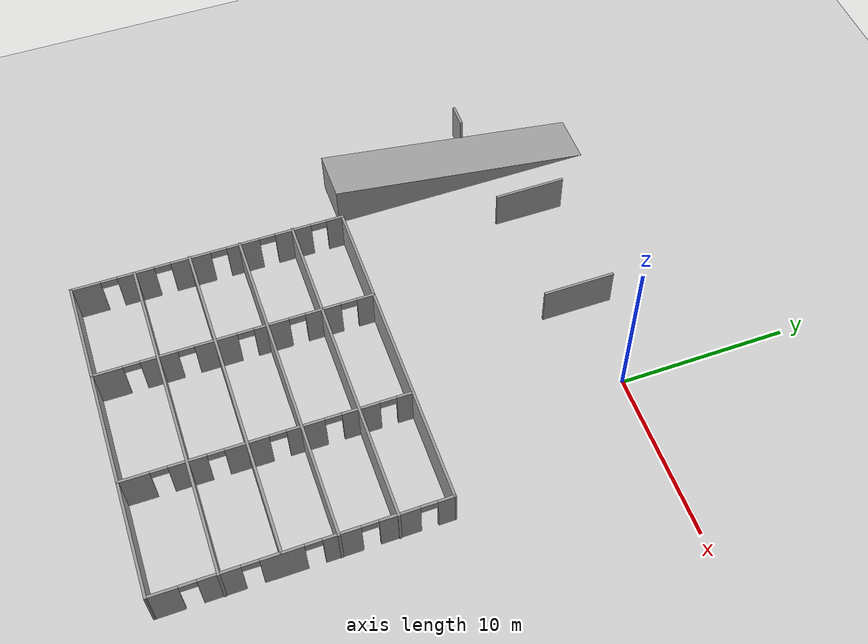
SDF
<sdf version="1.6">
 <world name="default">
  <model name="ground_plane">
   <static>1</static>
   <link name="link">
    <collision name="collision">
     <geometry><plane><normal>0 0 1</normal><size>100 100</size></plane></geometry>
     <surface>
      <contact><collide_bitmask>65535</collide_bitmask></contact>
      <friction><ode><mu>100</mu><mu2>50</mu2></ode></friction>
     </surface>
    </collision>
    <visual name="visual">
     <cast_shadows>0</cast_shadows>
     <geometry><plane><normal>0 0 1</normal><size>100 100</size></plane></geometry>
     <material>
      <script><uri>file://media/materials/scripts/gazebo.material</uri><name>Gazebo/Grey</name></script>
     </material>
    </visual>
   </link>
  </model>
  <model name="5x3_Cubicles">
   <pose>-3.37089 -19.9476 2.66445 0 -0 0</pose>
   <link name="Wall_0">
    <pose>-9.39351 -0 0 0 -0 -1.57435</pose>
    <visual name="Wall_0_Visual_0">
     <pose>-7.27295 0 1.25 0 -0 0</pose>
     <geometry><box><size>1.03181 0.15 2.5</size></box></geometry>
     <material>
      <script><uri>file://media/materials/scripts/gazebo.material</uri><name>Gazebo/Grey</name></script>
      <ambient>1 1 1 1</ambient>
     </material>
     <meta><layer>0</layer></meta>
    </visual>
    <collision name="Wall_0_Collision_0">
     <geometry><box><size>1.03181 0.15 2.5</size></box></geometry>
     <pose>-7.27295 0 1.25 0 -0 0</pose>
    </collision>
    <visual name="Wall_0_Visual_1">
     <pose>-4.8086 0 1.25 0 -0 0</pose>
     <geometry><box><size>2.09689 0.15 2.5</size></box></geometry>
     <material>
      <script><uri>file://media/materials/scripts/gazebo.material</uri><name>Gazebo/Grey</name></script>
      <ambient>1 1 1 1</ambient>
     </material>
     <meta><layer>0</layer></meta>
    </visual>
    <collision name="Wall_0_Collision_1">
     <geometry><box><size>2.09689 0.15 2.5</size></box></geometry>
     <pose>-4.8086 0 1.25 0 -0 0</pose>
    </collision>
    <visual name="Wall_0_Visual_2">
     <pose>-1.91379 0 1.25 0 -0 0</pose>
     <geometry><box><size>1.89272 0.15 2.5</size></box></geometry>
     <material>
      <script><uri>file://media/materials/scripts/gazebo.material</uri><name>Gazebo/Grey</name></script>
      <ambient>1 1 1 1</ambient>
     </material>
     <meta><layer>0</layer></meta>
    </visual>
    <collision name="Wall_0_Collision_2">
     <geometry><box><size>1.89272 0.15 2.5</size></box></geometry>
     <pose>-1.91379 0 1.25 0 -0 0</pose>
    </collision>
    <visual name="Wall_0_Visual_3">
     <pose>1.06918 0 1.25 0 -0 0</pose>
     <geometry><box><size>2.27323 0.15 2.5</size></box></geometry>
     <material>
      <script><uri>file://media/materials/scripts/gazebo.material</uri><name>Gazebo/Grey</name></script>
      <ambient>1 1 1 1</ambient>
     </material>
     <meta><layer>0</layer></meta>
    </visual>
    <collision name="Wall_0_Collision_3">
     <geometry><box><size>2.27323 0.15 2.5</size></box></geometry>
     <pose>1.06918 0 1.25 0 -0 0</pose>
    </collision>
    <visual name="Wall_0_Visual_4">
     <pose>4.14705 0 1.25 0 -0 0</pose>
     <geometry><box><size>2.0825 0.15 2.5</size></box></geometry>
     <material>
      <script><uri>file://media/materials/scripts/gazebo.material</uri><name>Gazebo/Grey</name></script>
      <ambient>1 1 1 1</ambient>
     </material>
     <meta><layer>0</layer></meta>
    </visual>
    <collision name="Wall_0_Collision_4">
     <geometry><box><size>2.0825 0.15 2.5</size></box></geometry>
     <pose>4.14705 0 1.25 0 -0 0</pose>
    </collision>
    <visual name="Wall_0_Visual_5">
     <pose>6.93858 0 1.25 0 -0 0</pose>
     <geometry><box><size>1.70057 0.15 2.5</size></box></geometry>
     <material>
      <script><uri>file://media/materials/scripts/gazebo.material</uri><name>Gazebo/Grey</name></script>
      <ambient>1 1 1 1</ambient>
     </material>
     <meta><layer>0</layer></meta>
    </visual>
    <collision name="Wall_0_Collision_5">
     <geometry><box><size>1.70057 0.15 2.5</size></box></geometry>
     <pose>6.93858 0 1.25 0 -0 0</pose>
    </collision>
    <visual name="Wall_0_Visual_6">
     <pose>-6.30705 0 2.25 0 -0 0</pose>
     <geometry><box><size>0.9 0.15 0.5</size></box></geometry>
     <material>
      <script><uri>file://media/materials/scripts/gazebo.material</uri><name>Gazebo/Grey</name></script>
      <ambient>1 1 1 1</ambient>
     </material>
     <meta><layer>0</layer></meta>
    </visual>
    <collision name="Wall_0_Collision_6">
     <geometry><box><size>0.9 0.15 0.5</size></box></geometry>
     <pose>-6.30705 0 2.25 0 -0 0</pose>
    </collision>
    <visual name="Wall_0_Visual_7">
     <pose>-3.31016 0 2.25 0 -0 0</pose>
     <geometry><box><size>0.9 0.15 0.5</size></box></geometry>
     <material>
      <script><uri>file://media/materials/scripts/gazebo.material</uri><name>Gazebo/Grey</name></script>
      <ambient>1 1 1 1</ambient>
     </material>
     <meta><layer>0</layer></meta>
    </visual>
    <collision name="Wall_0_Collision_7">
     <geometry><box><size>0.9 0.15 0.5</size></box></geometry>
     <pose>-3.31016 0 2.25 0 -0 0</pose>
    </collision>
    <visual name="Wall_0_Visual_8">
     <pose>-0.517433 0 2.25 0 -0 0</pose>
     <geometry><box><size>0.9 0.15 0.5</size></box></geometry>
     <material>
      <script><uri>file://media/materials/scripts/gazebo.material</uri><name>Gazebo/Grey</name></script>
      <ambient>1 1 1 1</ambient>
     </material>
     <meta><layer>0</layer></meta>
    </visual>
    <collision name="Wall_0_Collision_8">
     <geometry><box><size>0.9 0.15 0.5</size></box></geometry>
     <pose>-0.517433 0 2.25 0 -0 0</pose>
    </collision>
    <visual name="Wall_0_Visual_9">
     <pose>2.6558 0 2.25 0 -0 0</pose>
     <geometry><box><size>0.9 0.15 0.5</size></box></geometry>
     <material>
      <script><uri>file://media/materials/scripts/gazebo.material</uri><name>Gazebo/Grey</name></script>
      <ambient>1 1 1 1</ambient>
     </material>
     <meta><layer>0</layer></meta>
    </visual>
    <collision name="Wall_0_Collision_9">
     <geometry><box><size>0.9 0.15 0.5</size></box></geometry>
     <pose>2.6558 0 2.25 0 -0 0</pose>
    </collision>
    <visual name="Wall_0_Visual_10">
     <pose>5.63829 0 2.25 0 -0 0</pose>
     <geometry><box><size>0.9 0.15 0.5</size></box></geometry>
     <material>
      <script><uri>file://media/materials/scripts/gazebo.material</uri><name>Gazebo/Grey</name></script>
      <ambient>1 1 1 1</ambient>
     </material>
     <meta><layer>0</layer></meta>
    </visual>
    <collision name="Wall_0_Collision_10">
     <geometry><box><size>0.9 0.15 0.5</size></box></geometry>
     <pose>5.63829 0 2.25 0 -0 0</pose>
    </collision>
   </link>
   <link name="Wall_10">
    <collision name="Wall_10_Collision">
     <geometry><box><size>19 0.15 2.5</size></box></geometry>
     <pose>0 0 1.25 0 -0 0</pose>
    </collision>
    <visual name="Wall_10_Visual">
     <pose>0 0 1.25 0 -0 0</pose>
     <geometry><box><size>19 0.15 2.5</size></box></geometry>
     <material>
      <script><uri>file://media/materials/scripts/gazebo.material</uri><name>Gazebo/Grey</name></script>
      <ambient>1 1 1 1</ambient>
     </material>
     <meta><layer>0</layer></meta>
    </visual>
    <pose>-0 1.73972 0 0 -0 0</pose>
   </link>
   <link name="Wall_12">
    <collision name="Wall_12_Collision">
     <geometry><box><size>19 0.15 2.5</size></box></geometry>
     <pose>0 0 1.25 0 -0 0</pose>
    </collision>
    <visual name="Wall_12_Visual">
     <pose>0 0 1.25 0 -0 0</pose>
     <geometry><box><size>19 0.15 2.5</size></box></geometry>
     <material>
      <script><uri>file://media/materials/scripts/gazebo.material</uri><name>Gazebo/Grey</name></script>
      <ambient>1 1 1 1</ambient>
     </material>
     <meta><layer>0</layer></meta>
    </visual>
    <pose>0.002757 4.78648 0 0 -0 0</pose>
   </link>
   <link name="Wall_14">
    <pose>3.03244 -0.038205 0 0 -0 -1.57332</pose>
    <visual name="Wall_14_Visual_0">
     <pose>-7.27661 0 1.25 0 -0 0</pose>
     <geometry><box><size>0.887786 0.15 2.5</size></box></geometry>
     <material>
      <script><uri>file://media/materials/scripts/gazebo.material</uri><name>Gazebo/Grey</name></script>
      <ambient>1 1 1 1</ambient>
     </material>
     <meta><layer>0</layer></meta>
    </visual>
    <collision name="Wall_14_Collision_0">
     <geometry><box><size>0.887786 0.15 2.5</size></box></geometry>
     <pose>-7.27661 0 1.25 0 -0 0</pose>
    </collision>
    <visual name="Wall_14_Visual_1">
     <pose>-4.91212 0 1.25 0 -0 0</pose>
     <geometry><box><size>2.04118 0.15 2.5</size></box></geometry>
     <material>
      <script><uri>file://media/materials/scripts/gazebo.material</uri><name>Gazebo/Grey</name></script>
      <ambient>1 1 1 1</ambient>
     </material>
     <meta><layer>0</layer></meta>
    </visual>
    <collision name="Wall_14_Collision_1">
     <geometry><box><size>2.04118 0.15 2.5</size></box></geometry>
     <pose>-4.91212 0 1.25 0 -0 0</pose>
    </collision>
    <visual name="Wall_14_Visual_2">
     <pose>-1.97726 0 1.25 0 -0 0</pose>
     <geometry><box><size>2.02854 0.15 2.5</size></box></geometry>
     <material>
      <script><uri>file://media/materials/scripts/gazebo.material</uri><name>Gazebo/Grey</name></script>
      <ambient>1 1 1 1</ambient>
     </material>
     <meta><layer>0</layer></meta>
    </visual>
    <collision name="Wall_14_Collision_2">
     <geometry><box><size>2.02854 0.15 2.5</size></box></geometry>
     <pose>-1.97726 0 1.25 0 -0 0</pose>
    </collision>
    <visual name="Wall_14_Visual_3">
     <pose>1.09454 0 1.25 0 -0 0</pose>
     <geometry><box><size>2.31505 0.15 2.5</size></box></geometry>
     <material>
      <script><uri>file://media/materials/scripts/gazebo.material</uri><name>Gazebo/Grey</name></script>
      <ambient>1 1 1 1</ambient>
     </material>
     <meta><layer>0</layer></meta>
    </visual>
    <collision name="Wall_14_Collision_3">
     <geometry><box><size>2.31505 0.15 2.5</size></box></geometry>
     <pose>1.09454 0 1.25 0 -0 0</pose>
    </collision>
    <visual name="Wall_14_Visual_4">
     <pose>4.15071 0 1.25 0 -0 0</pose>
     <geometry><box><size>1.9973 0.15 2.5</size></box></geometry>
     <material>
      <script><uri>file://media/materials/scripts/gazebo.material</uri><name>Gazebo/Grey</name></script>
      <ambient>1 1 1 1</ambient>
     </material>
     <meta><layer>0</layer></meta>
    </visual>
    <collision name="Wall_14_Collision_4">
     <geometry><box><size>1.9973 0.15 2.5</size></box></geometry>
     <pose>4.15071 0 1.25 0 -0 0</pose>
    </collision>
    <visual name="Wall_14_Visual_5">
     <pose>6.88493 0 1.25 0 -0 0</pose>
     <geometry><box><size>1.67114 0.15 2.5</size></box></geometry>
     <material>
      <script><uri>file://media/materials/scripts/gazebo.material</uri><name>Gazebo/Grey</name></script>
      <ambient>1 1 1 1</ambient>
     </material>
     <meta><layer>0</layer></meta>
    </visual>
    <collision name="Wall_14_Collision_5">
     <geometry><box><size>1.67114 0.15 2.5</size></box></geometry>
     <pose>6.88493 0 1.25 0 -0 0</pose>
    </collision>
    <visual name="Wall_14_Visual_6">
     <pose>-6.38271 0 2.25 0 -0 0</pose>
     <geometry><box><size>0.9 0.15 0.5</size></box></geometry>
     <material>
      <script><uri>file://media/materials/scripts/gazebo.material</uri><name>Gazebo/Grey</name></script>
      <ambient>1 1 1 1</ambient>
     </material>
     <meta><layer>0</layer></meta>
    </visual>
    <collision name="Wall_14_Collision_6">
     <geometry><box><size>0.9 0.15 0.5</size></box></geometry>
     <pose>-6.38271 0 2.25 0 -0 0</pose>
    </collision>
    <visual name="Wall_14_Visual_7">
     <pose>-3.44153 0 2.25 0 -0 0</pose>
     <geometry><box><size>0.9 0.15 0.5</size></box></geometry>
     <material>
      <script><uri>file://media/materials/scripts/gazebo.material</uri><name>Gazebo/Grey</name></script>
      <ambient>1 1 1 1</ambient>
     </material>
     <meta><layer>0</layer></meta>
    </visual>
    <collision name="Wall_14_Collision_7">
     <geometry><box><size>0.9 0.15 0.5</size></box></geometry>
     <pose>-3.44153 0 2.25 0 -0 0</pose>
    </collision>
    <visual name="Wall_14_Visual_8">
     <pose>-0.512986 0 2.25 0 -0 0</pose>
     <geometry><box><size>0.9 0.15 0.5</size></box></geometry>
     <material>
      <script><uri>file://media/materials/scripts/gazebo.material</uri><name>Gazebo/Grey</name></script>
      <ambient>1 1 1 1</ambient>
     </material>
     <meta><layer>0</layer></meta>
    </visual>
    <collision name="Wall_14_Collision_8">
     <geometry><box><size>0.9 0.15 0.5</size></box></geometry>
     <pose>-0.512986 0 2.25 0 -0 0</pose>
    </collision>
    <visual name="Wall_14_Visual_9">
     <pose>2.70206 0 2.25 0 -0 0</pose>
     <geometry><box><size>0.9 0.15 0.5</size></box></geometry>
     <material>
      <script><uri>file://media/materials/scripts/gazebo.material</uri><name>Gazebo/Grey</name></script>
      <ambient>1 1 1 1</ambient>
     </material>
     <meta><layer>0</layer></meta>
    </visual>
    <collision name="Wall_14_Collision_9">
     <geometry><box><size>0.9 0.15 0.5</size></box></geometry>
     <pose>2.70206 0 2.25 0 -0 0</pose>
    </collision>
    <visual name="Wall_14_Visual_10">
     <pose>5.59936 0 2.25 0 -0 0</pose>
     <geometry><box><size>0.9 0.15 0.5</size></box></geometry>
     <material>
      <script><uri>file://media/materials/scripts/gazebo.material</uri><name>Gazebo/Grey</name></script>
      <ambient>1 1 1 1</ambient>
     </material>
     <meta><layer>0</layer></meta>
    </visual>
    <collision name="Wall_14_Collision_10">
     <geometry><box><size>0.9 0.15 0.5</size></box></geometry>
     <pose>5.59936 0 2.25 0 -0 0</pose>
    </collision>
   </link>
   <link name="Wall_16">
    <pose>-3.57321 -0.011645 0 0 -0 -1.5708</pose>
    <visual name="Wall_16_Visual_0">
     <pose>-7.25015 0 1.25 0 -0 0</pose>
     <geometry><box><size>0.999697 0.15 2.5</size></box></geometry>
     <material>
      <script><uri>file://media/materials/scripts/gazebo.material</uri><name>Gazebo/Grey</name></script>
      <ambient>1 1 1 1</ambient>
     </material>
     <meta><layer>0</layer></meta>
    </visual>
    <collision name="Wall_16_Collision_0">
     <geometry><box><size>0.999697 0.15 2.5</size></box></geometry>
     <pose>-7.25015 0 1.25 0 -0 0</pose>
    </collision>
    <visual name="Wall_16_Visual_1">
     <pose>-4.84832 0 1.25 0 -0 0</pose>
     <geometry><box><size>2.00397 0.15 2.5</size></box></geometry>
     <material>
      <script><uri>file://media/materials/scripts/gazebo.material</uri><name>Gazebo/Grey</name></script>
      <ambient>1 1 1 1</ambient>
     </material>
     <meta><layer>0</layer></meta>
    </visual>
    <collision name="Wall_16_Collision_1">
     <geometry><box><size>2.00397 0.15 2.5</size></box></geometry>
     <pose>-4.84832 0 1.25 0 -0 0</pose>
    </collision>
    <visual name="Wall_16_Visual_2">
     <pose>-1.97337 0 1.25 0 -0 0</pose>
     <geometry><box><size>1.94594 0.15 2.5</size></box></geometry>
     <material>
      <script><uri>file://media/materials/scripts/gazebo.material</uri><name>Gazebo/Grey</name></script>
      <ambient>1 1 1 1</ambient>
     </material>
     <meta><layer>0</layer></meta>
    </visual>
    <collision name="Wall_16_Collision_2">
     <geometry><box><size>1.94594 0.15 2.5</size></box></geometry>
     <pose>-1.97337 0 1.25 0 -0 0</pose>
    </collision>
    <visual name="Wall_16_Visual_3">
     <pose>1.06765 0 1.25 0 -0 0</pose>
     <geometry><box><size>2.3361 0.15 2.5</size></box></geometry>
     <material>
      <script><uri>file://media/materials/scripts/gazebo.material</uri><name>Gazebo/Grey</name></script>
      <ambient>1 1 1 1</ambient>
     </material>
     <meta><layer>0</layer></meta>
    </visual>
    <collision name="Wall_16_Collision_3">
     <geometry><box><size>2.3361 0.15 2.5</size></box></geometry>
     <pose>1.06765 0 1.25 0 -0 0</pose>
    </collision>
    <visual name="Wall_16_Visual_4">
     <pose>4.14512 0 1.25 0 -0 0</pose>
     <geometry><box><size>2.01884 0.15 2.5</size></box></geometry>
     <material>
      <script><uri>file://media/materials/scripts/gazebo.material</uri><name>Gazebo/Grey</name></script>
      <ambient>1 1 1 1</ambient>
     </material>
     <meta><layer>0</layer></meta>
    </visual>
    <collision name="Wall_16_Collision_4">
     <geometry><box><size>2.01884 0.15 2.5</size></box></geometry>
     <pose>4.14512 0 1.25 0 -0 0</pose>
    </collision>
    <visual name="Wall_16_Visual_5">
     <pose>6.90227 0 1.25 0 -0 0</pose>
     <geometry><box><size>1.69546 0.15 2.5</size></box></geometry>
     <material>
      <script><uri>file://media/materials/scripts/gazebo.material</uri><name>Gazebo/Grey</name></script>
      <ambient>1 1 1 1</ambient>
     </material>
     <meta><layer>0</layer></meta>
    </visual>
    <collision name="Wall_16_Collision_5">
     <geometry><box><size>1.69546 0.15 2.5</size></box></geometry>
     <pose>6.90227 0 1.25 0 -0 0</pose>
    </collision>
    <visual name="Wall_16_Visual_6">
     <pose>-6.3003 0 2.25 0 -0 0</pose>
     <geometry><box><size>0.9 0.15 0.5</size></box></geometry>
     <material>
      <script><uri>file://media/materials/scripts/gazebo.material</uri><name>Gazebo/Grey</name></script>
      <ambient>1 1 1 1</ambient>
     </material>
     <meta><layer>0</layer></meta>
    </visual>
    <collision name="Wall_16_Collision_6">
     <geometry><box><size>0.9 0.15 0.5</size></box></geometry>
     <pose>-6.3003 0 2.25 0 -0 0</pose>
    </collision>
    <visual name="Wall_16_Visual_7">
     <pose>-3.39634 0 2.25 0 -0 0</pose>
     <geometry><box><size>0.9 0.15 0.5</size></box></geometry>
     <material>
      <script><uri>file://media/materials/scripts/gazebo.material</uri><name>Gazebo/Grey</name></script>
      <ambient>1 1 1 1</ambient>
     </material>
     <meta><layer>0</layer></meta>
    </visual>
    <collision name="Wall_16_Collision_7">
     <geometry><box><size>0.9 0.15 0.5</size></box></geometry>
     <pose>-3.39634 0 2.25 0 -0 0</pose>
    </collision>
    <visual name="Wall_16_Visual_8">
     <pose>-0.5504 0 2.25 0 -0 0</pose>
     <geometry><box><size>0.9 0.15 0.5</size></box></geometry>
     <material>
      <script><uri>file://media/materials/scripts/gazebo.material</uri><name>Gazebo/Grey</name></script>
      <ambient>1 1 1 1</ambient>
     </material>
     <meta><layer>0</layer></meta>
    </visual>
    <collision name="Wall_16_Collision_8">
     <geometry><box><size>0.9 0.15 0.5</size></box></geometry>
     <pose>-0.5504 0 2.25 0 -0 0</pose>
    </collision>
    <visual name="Wall_16_Visual_9">
     <pose>2.6857 0 2.25 0 -0 0</pose>
     <geometry><box><size>0.9 0.15 0.5</size></box></geometry>
     <material>
      <script><uri>file://media/materials/scripts/gazebo.material</uri><name>Gazebo/Grey</name></script>
      <ambient>1 1 1 1</ambient>
     </material>
     <meta><layer>0</layer></meta>
    </visual>
    <collision name="Wall_16_Collision_9">
     <geometry><box><size>0.9 0.15 0.5</size></box></geometry>
     <pose>2.6857 0 2.25 0 -0 0</pose>
    </collision>
    <visual name="Wall_16_Visual_10">
     <pose>5.60454 0 2.25 0 -0 0</pose>
     <geometry><box><size>0.9 0.15 0.5</size></box></geometry>
     <material>
      <script><uri>file://media/materials/scripts/gazebo.material</uri><name>Gazebo/Grey</name></script>
      <ambient>1 1 1 1</ambient>
     </material>
     <meta><layer>0</layer></meta>
    </visual>
    <collision name="Wall_16_Collision_10">
     <geometry><box><size>0.9 0.15 0.5</size></box></geometry>
     <pose>5.60454 0 2.25 0 -0 0</pose>
    </collision>
   </link>
   <link name="Wall_2">
    <collision name="Wall_2_Collision">
     <geometry><box><size>19 0.15 2.5</size></box></geometry>
     <pose>0 0 1.25 0 -0 0</pose>
    </collision>
    <visual name="Wall_2_Visual">
     <pose>0 0 1.25 0 -0 0</pose>
     <geometry><box><size>19 0.15 2.5</size></box></geometry>
     <material>
      <script><uri>file://media/materials/scripts/gazebo.material</uri><name>Gazebo/Grey</name></script>
      <ambient>1 1 1 1</ambient>
     </material>
     <meta><layer>0</layer></meta>
    </visual>
    <pose>0.004043 -7.71378 0 0 -0 0</pose>
   </link>
   <link name="Wall_3">
    <pose>9.40486 -0.007207 0 0 -0 1.57394</pose>
    <visual name="Wall_3_Visual_0">
     <pose>-6.96276 0 1.25 0 -0 0</pose>
     <geometry><box><size>1.63776 0.15 2.5</size></box></geometry>
     <material>
      <script><uri>file://media/materials/scripts/gazebo.material</uri><name>Gazebo/Grey</name></script>
      <ambient>1 1 1 1</ambient>
     </material>
     <meta><layer>0</layer></meta>
    </visual>
    <collision name="Wall_3_Collision_0">
     <geometry><box><size>1.63776 0.15 2.5</size></box></geometry>
     <pose>-6.96276 0 1.25 0 -0 0</pose>
    </collision>
    <visual name="Wall_3_Visual_1">
     <pose>-4.17068 0 1.25 0 -0 0</pose>
     <geometry><box><size>2.14639 0.15 2.5</size></box></geometry>
     <material>
      <script><uri>file://media/materials/scripts/gazebo.material</uri><name>Gazebo/Grey</name></script>
      <ambient>1 1 1 1</ambient>
     </material>
     <meta><layer>0</layer></meta>
    </visual>
    <collision name="Wall_3_Collision_1">
     <geometry><box><size>2.14639 0.15 2.5</size></box></geometry>
     <pose>-4.17068 0 1.25 0 -0 0</pose>
    </collision>
    <visual name="Wall_3_Visual_2">
     <pose>-1.08256 0 1.25 0 -0 0</pose>
     <geometry><box><size>2.22987 0.15 2.5</size></box></geometry>
     <material>
      <script><uri>file://media/materials/scripts/gazebo.material</uri><name>Gazebo/Grey</name></script>
      <ambient>1 1 1 1</ambient>
     </material>
     <meta><layer>0</layer></meta>
    </visual>
    <collision name="Wall_3_Collision_2">
     <geometry><box><size>2.22987 0.15 2.5</size></box></geometry>
     <pose>-1.08256 0 1.25 0 -0 0</pose>
    </collision>
    <visual name="Wall_3_Visual_3">
     <pose>1.90922 0 1.25 0 -0 0</pose>
     <geometry><box><size>1.95369 0.15 2.5</size></box></geometry>
     <material>
      <script><uri>file://media/materials/scripts/gazebo.material</uri><name>Gazebo/Grey</name></script>
      <ambient>1 1 1 1</ambient>
     </material>
     <meta><layer>0</layer></meta>
    </visual>
    <collision name="Wall_3_Collision_3">
     <geometry><box><size>1.95369 0.15 2.5</size></box></geometry>
     <pose>1.90922 0 1.25 0 -0 0</pose>
    </collision>
    <visual name="Wall_3_Visual_4">
     <pose>4.85258 0 1.25 0 -0 0</pose>
     <geometry><box><size>2.13302 0.15 2.5</size></box></geometry>
     <material>
      <script><uri>file://media/materials/scripts/gazebo.material</uri><name>Gazebo/Grey</name></script>
      <ambient>1 1 1 1</ambient>
     </material>
     <meta><layer>0</layer></meta>
    </visual>
    <collision name="Wall_3_Collision_4">
     <geometry><box><size>2.13302 0.15 2.5</size></box></geometry>
     <pose>4.85258 0 1.25 0 -0 0</pose>
    </collision>
    <visual name="Wall_3_Visual_5">
     <pose>7.30037 0 1.25 0 -0 0</pose>
     <geometry><box><size>0.962557 0.15 2.5</size></box></geometry>
     <material>
      <script><uri>file://media/materials/scripts/gazebo.material</uri><name>Gazebo/Grey</name></script>
      <ambient>1 1 1 1</ambient>
     </material>
     <meta><layer>0</layer></meta>
    </visual>
    <collision name="Wall_3_Collision_5">
     <geometry><box><size>0.962557 0.15 2.5</size></box></geometry>
     <pose>7.30037 0 1.25 0 -0 0</pose>
    </collision>
    <visual name="Wall_3_Visual_6">
     <pose>-5.69388 0 2.25 0 -0 0</pose>
     <geometry><box><size>0.9 0.15 0.5</size></box></geometry>
     <material>
      <script><uri>file://media/materials/scripts/gazebo.material</uri><name>Gazebo/Grey</name></script>
      <ambient>1 1 1 1</ambient>
     </material>
     <meta><layer>0</layer></meta>
    </visual>
    <collision name="Wall_3_Collision_6">
     <geometry><box><size>0.9 0.15 0.5</size></box></geometry>
     <pose>-5.69388 0 2.25 0 -0 0</pose>
    </collision>
    <visual name="Wall_3_Visual_7">
     <pose>-2.64749 0 2.25 0 -0 0</pose>
     <geometry><box><size>0.9 0.15 0.5</size></box></geometry>
     <material>
      <script><uri>file://media/materials/scripts/gazebo.material</uri><name>Gazebo/Grey</name></script>
      <ambient>1 1 1 1</ambient>
     </material>
     <meta><layer>0</layer></meta>
    </visual>
    <collision name="Wall_3_Collision_7">
     <geometry><box><size>0.9 0.15 0.5</size></box></geometry>
     <pose>-2.64749 0 2.25 0 -0 0</pose>
    </collision>
    <visual name="Wall_3_Visual_8">
     <pose>0.482376 0 2.25 0 -0 0</pose>
     <geometry><box><size>0.9 0.15 0.5</size></box></geometry>
     <material>
      <script><uri>file://media/materials/scripts/gazebo.material</uri><name>Gazebo/Grey</name></script>
      <ambient>1 1 1 1</ambient>
     </material>
     <meta><layer>0</layer></meta>
    </visual>
    <collision name="Wall_3_Collision_8">
     <geometry><box><size>0.9 0.15 0.5</size></box></geometry>
     <pose>0.482376 0 2.25 0 -0 0</pose>
    </collision>
    <visual name="Wall_3_Visual_9">
     <pose>3.33607 0 2.25 0 -0 0</pose>
     <geometry><box><size>0.9 0.15 0.5</size></box></geometry>
     <material>
      <script><uri>file://media/materials/scripts/gazebo.material</uri><name>Gazebo/Grey</name></script>
      <ambient>1 1 1 1</ambient>
     </material>
     <meta><layer>0</layer></meta>
    </visual>
    <collision name="Wall_3_Collision_9">
     <geometry><box><size>0.9 0.15 0.5</size></box></geometry>
     <pose>3.33607 0 2.25 0 -0 0</pose>
    </collision>
    <visual name="Wall_3_Visual_10">
     <pose>6.36909 0 2.25 0 -0 0</pose>
     <geometry><box><size>0.9 0.15 0.5</size></box></geometry>
     <material>
      <script><uri>file://media/materials/scripts/gazebo.material</uri><name>Gazebo/Grey</name></script>
      <ambient>1 1 1 1</ambient>
     </material>
     <meta><layer>0</layer></meta>
    </visual>
    <collision name="Wall_3_Collision_10">
     <geometry><box><size>0.9 0.15 0.5</size></box></geometry>
     <pose>6.36909 0 2.25 0 -0 0</pose>
    </collision>
   </link>
   <link name="Wall_4">
    <collision name="Wall_4_Collision">
     <geometry><box><size>18.8967 0.15 2.5</size></box></geometry>
     <pose>0 0 1.25 0 -0 0</pose>
    </collision>
    <visual name="Wall_4_Visual">
     <pose>0 0 1.25 0 -0 0</pose>
     <geometry><box><size>18.8967 0.15 2.5</size></box></geometry>
     <material>
      <script><uri>file://media/materials/scripts/gazebo.material</uri><name>Gazebo/Grey</name></script>
      <ambient>1 1 1 1</ambient>
     </material>
     <meta><layer>0</layer></meta>
    </visual>
    <pose>0.0073 7.70657 0 0 -0 3.14082</pose>
   </link>
   <link name="Wall_6">
    <collision name="Wall_6_Collision">
     <geometry><box><size>19 0.15 2.5</size></box></geometry>
     <pose>0 0 1.25 0 -0 0</pose>
    </collision>
    <visual name="Wall_6_Visual">
     <pose>0 0 1.25 0 -0 0</pose>
     <geometry><box><size>19 0.15 2.5</size></box></geometry>
     <material>
      <script><uri>file://media/materials/scripts/gazebo.material</uri><name>Gazebo/Grey</name></script>
      <ambient>1 1 1 1</ambient>
     </material>
     <meta><layer>0</layer></meta>
    </visual>
    <pose>0.024186 -4.2101 0 0 -0 0</pose>
   </link>
   <link name="Wall_8">
    <collision name="Wall_8_Collision">
     <geometry><box><size>19 0.15 2.5</size></box></geometry>
     <pose>0 0 1.25 0 -0 0</pose>
    </collision>
    <visual name="Wall_8_Visual">
     <pose>0 0 1.25 0 -0 0</pose>
     <geometry><box><size>19 0.15 2.5</size></box></geometry>
     <material>
      <script><uri>file://media/materials/scripts/gazebo.material</uri><name>Gazebo/Grey</name></script>
      <ambient>1 1 1 1</ambient>
     </material>
     <meta><layer>0</layer></meta>
    </visual>
    <pose>-0.024187 -1.11426 0 0 -0 0</pose>
   </link>
   <static>1</static>
  </model>
  <model name="Level_1_with_doors">
   <link name="Wall_111_clone">
    <pose>-25.0501 -25.0736 0 0 -0 0</pose>
    <inertial>
     <mass>0.80429</mass>
     <inertia>
      <ixx>0.420409</ixx>
      <ixy>0</ixy>
      <ixz>0</ixz>
      <iyy>0.55168</iyy>
      <iyz>0</iyz>
      <izz>0.134288</izz>
     </inertia>
    </inertial>
    <visual name="Wall_111_Visual">
     <pose>0 0 1.25 0 -0 0</pose>
     <geometry><box><size>1.40751 0.15 2.5</size></box></geometry>
     <material>
      <script><uri>file://media/materials/scripts/gazebo.material</uri><name>Gazebo/Grey</name></script>
      <ambient>1 1 1 1</ambient>
      <shader type="pixel"><normal_map>__default__</normal_map></shader>
      <diffuse>0.7 0.7 0.7 1</diffuse>
      <specular>0.01 0.01 0.01 1</specular>
      <emissive>0 0 0 1</emissive>
     </material>
     <meta><layer>0</layer></meta>
    </visual>
    <collision name="Wall_111_Collision">
     <pose>0 0 1.25 0 -0 0</pose>
     <geometry><box><size>1.40751 0.15 2.5</size></box></geometry>
     <surface>
      <friction>
       <ode><mu>1</mu><mu2>1</mu2><fdir1>0 0 0</fdir1><slip1>0</slip1><slip2>0</slip2></ode>
       <torsional>
        <coefficient>1</coefficient>
        <patch_radius>0</patch_radius>
        <surface_radius>0</surface_radius>
        <use_patch_radius>1</use_patch_radius>
        <ode><slip>0</slip></ode>
       </torsional>
      </friction>
      <bounce><restitution_coefficient>0</restitution_coefficient><threshold>1e+06</threshold></bounce>
      <contact>
       <collide_without_contact>0</collide_without_contact>
       <collide_without_contact_bitmask>1</collide_without_contact_bitmask>
       <collide_bitmask>1</collide_bitmask>
       <ode>
        <soft_cfm>0</soft_cfm>
        <soft_erp>0.2</soft_erp>
        <kp>1e+13</kp>
        <kd>1</kd>
        <max_vel>0.01</max_vel>
        <min_depth>0</min_depth>
       </ode>
       <bullet>
        <split_impulse>1</split_impulse>
        <split_impulse_penetration_threshold>-0.01</split_impulse_penetration_threshold>
        <soft_cfm>0</soft_cfm>
        <soft_erp>0.2</soft_erp>
        <kp>1e+13</kp>
        <kd>1</kd>
       </bullet>
      </contact>
     </surface>
    </collision>
   </link>
   <link name="Wall_117">
    <pose>-17.9512 -23.0339 0 0 -0 1.5708</pose>
    <visual name="Wall_117_Visual">
     <pose>0 0 1.25 0 -0 0</pose>
     <geometry><box><size>4.25 0.15 2.5</size></box></geometry>
     <material>
      <script><uri>file://media/materials/scripts/gazebo.material</uri><name>Gazebo/Grey</name></script>
      <ambient>1 1 1 1</ambient>
      <shader type="pixel"/>
     </material>
     <meta><layer>0</layer></meta>
    </visual>
    <collision name="Wall_117_Collision">
     <pose>0 0 1.25 0 -0 0</pose>
     <geometry><box><size>4.25 0.15 2.5</size></box></geometry>
     <surface>
      <friction>
       <ode><mu>1</mu><mu2>1</mu2><fdir1>0 0 0</fdir1><slip1>0</slip1><slip2>0</slip2></ode>
       <torsional>
        <coefficient>1</coefficient>
        <patch_radius>0</patch_radius>
        <surface_radius>0</surface_radius>
        <use_patch_radius>1</use_patch_radius>
        <ode><slip>0</slip></ode>
       </torsional>
      </friction>
      <bounce><restitution_coefficient>0</restitution_coefficient><threshold>1e+06</threshold></bounce>
      <contact>
       <collide_without_contact>0</collide_without_contact>
       <collide_without_contact_bitmask>1</collide_without_contact_bitmask>
       <collide_bitmask>1</collide_bitmask>
       <ode>
        <soft_cfm>0</soft_cfm>
        <soft_erp>0.2</soft_erp>
        <kp>1e+13</kp>
        <kd>1</kd>
        <max_vel>0.01</max_vel>
        <min_depth>0</min_depth>
       </ode>
       <bullet>
        <split_impulse>1</split_impulse>
        <split_impulse_penetration_threshold>-0.01</split_impulse_penetration_threshold>
        <soft_cfm>0</soft_cfm>
        <soft_erp>0.2</soft_erp>
        <kp>1e+13</kp>
        <kd>1</kd>
       </bullet>
      </contact>
     </surface>
    </collision>
   </link>
   <link name="Wall_119">
    <pose>-10.3512 -23.0339 0 0 0 -1.5708</pose>
    <visual name="Wall_119_Visual">
     <pose>0 0 1.25 0 -0 0</pose>
     <geometry><box><size>4.25 0.15 2.5</size></box></geometry>
     <material>
      <script><uri>file://media/materials/scripts/gazebo.material</uri><name>Gazebo/Grey</name></script>
      <ambient>1 1 1 1</ambient>
      <shader type="pixel"/>
     </material>
     <meta><layer>0</layer></meta>
    </visual>
    <collision name="Wall_119_Collision">
     <pose>0 0 1.25 0 -0 0</pose>
     <geometry><box><size>4.25 0.15 2.5</size></box></geometry>
     <surface>
      <friction>
       <ode><mu>1</mu><mu2>1</mu2><fdir1>0 0 0</fdir1><slip1>0</slip1><slip2>0</slip2></ode>
       <torsional>
        <coefficient>1</coefficient>
        <patch_radius>0</patch_radius>
        <surface_radius>0</surface_radius>
        <use_patch_radius>1</use_patch_radius>
        <ode><slip>0</slip></ode>
       </torsional>
      </friction>
      <bounce><restitution_coefficient>0</restitution_coefficient><threshold>1e+06</threshold></bounce>
      <contact>
       <collide_without_contact>0</collide_without_contact>
       <collide_without_contact_bitmask>1</collide_without_contact_bitmask>
       <collide_bitmask>1</collide_bitmask>
       <ode>
        <soft_cfm>0</soft_cfm>
        <soft_erp>0.2</soft_erp>
        <kp>1e+13</kp>
        <kd>1</kd>
        <max_vel>0.01</max_vel>
        <min_depth>0</min_depth>
       </ode>
       <bullet>
        <split_impulse>1</split_impulse>
        <split_impulse_penetration_threshold>-0.01</split_impulse_penetration_threshold>
        <soft_cfm>0</soft_cfm>
        <soft_erp>0.2</soft_erp>
        <kp>1e+13</kp>
        <kd>1</kd>
       </bullet>
      </contact>
     </surface>
    </collision>
   </link>
   <static>1</static>
   <pose>4.79959 22.5424 0 0 -0 0</pose>
  </model>
  <model name="RAMP_NEW">
   <link name="link_0">
    <inertial>
     <mass>1</mass>
     <inertia>
      <ixx>0.166667</ixx>
      <ixy>0</ixy>
      <ixz>0</ixz>
      <iyy>0.166667</iyy>
      <iyz>0</iyz>
      <izz>0.166667</izz>
     </inertia>
    </inertial>
    <pose>4e-06 5e-06 0 0 -0 0</pose>
    <visual name="visual">
     <geometry>
      <mesh><uri>/home/vignesh/catkin_ws/src/office/meshes/ramp4.dae</uri><scale>1 1 1</scale></mesh>
     </geometry>
     <material>
      <lighting>1</lighting>
      <script><uri>file://media/materials/scripts/gazebo.material</uri><name>Gazebo/Grey</name></script>
      <shader type="pixel"/>
     </material>
    </visual>
    <collision name="collision">
     <geometry>
      <mesh><uri>/home/vignesh/catkin_ws/src/office/meshes/ramp4.dae</uri><scale>1 1 1</scale></mesh>
     </geometry>
     <surface>
      <friction>
       <ode><mu>1</mu><mu2>1</mu2><fdir1>0 0 0</fdir1><slip1>0</slip1><slip2>0</slip2></ode>
       <torsional>
        <coefficient>1</coefficient>
        <patch_radius>0</patch_radius>
        <surface_radius>0</surface_radius>
        <use_patch_radius>1</use_patch_radius>
        <ode><slip>0</slip></ode>
       </torsional>
      </friction>
      <bounce><restitution_coefficient>0</restitution_coefficient><threshold>1e+06</threshold></bounce>
      <contact>
       <collide_without_contact>0</collide_without_contact>
       <collide_without_contact_bitmask>1</collide_without_contact_bitmask>
       <collide_bitmask>1</collide_bitmask>
       <ode>
        <soft_cfm>0</soft_cfm>
        <soft_erp>0.2</soft_erp>
        <kp>1e+13</kp>
        <kd>1</kd>
        <max_vel>0.01</max_vel>
        <min_depth>0</min_depth>
       </ode>
       <bullet>
        <split_impulse>1</split_impulse>
        <split_impulse_penetration_threshold>-0.01</split_impulse_penetration_threshold>
        <soft_cfm>0</soft_cfm>
        <soft_erp>0.2</soft_erp>
        <kp>1e+13</kp>
        <kd>1</kd>
       </bullet>
      </contact>
     </surface>
    </collision>
   </link>
   <static>1</static>
   <pose>-18.063 -5.98359 0.773383 0 0 -1.56706</pose>
  </model>
 </world>
</sdf>
